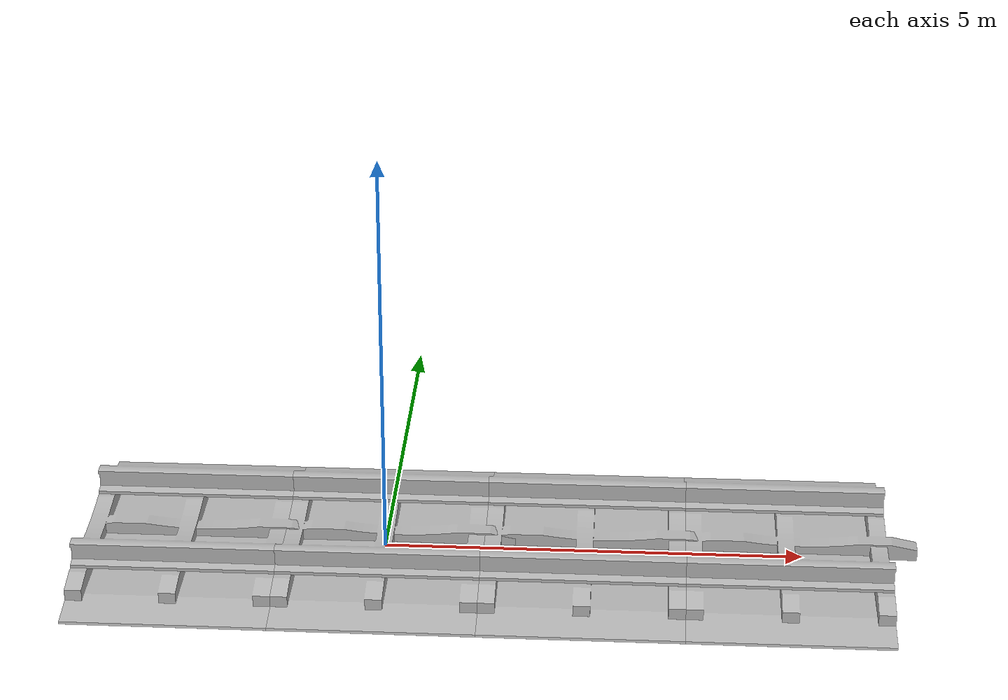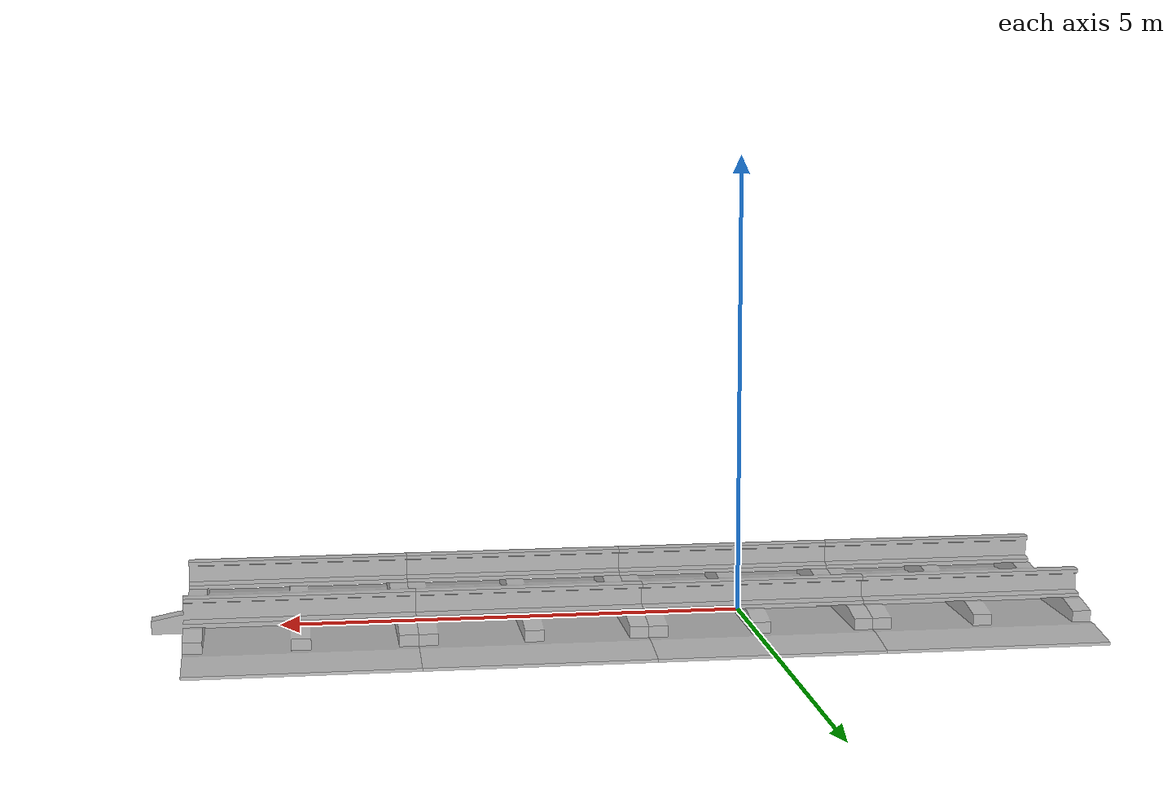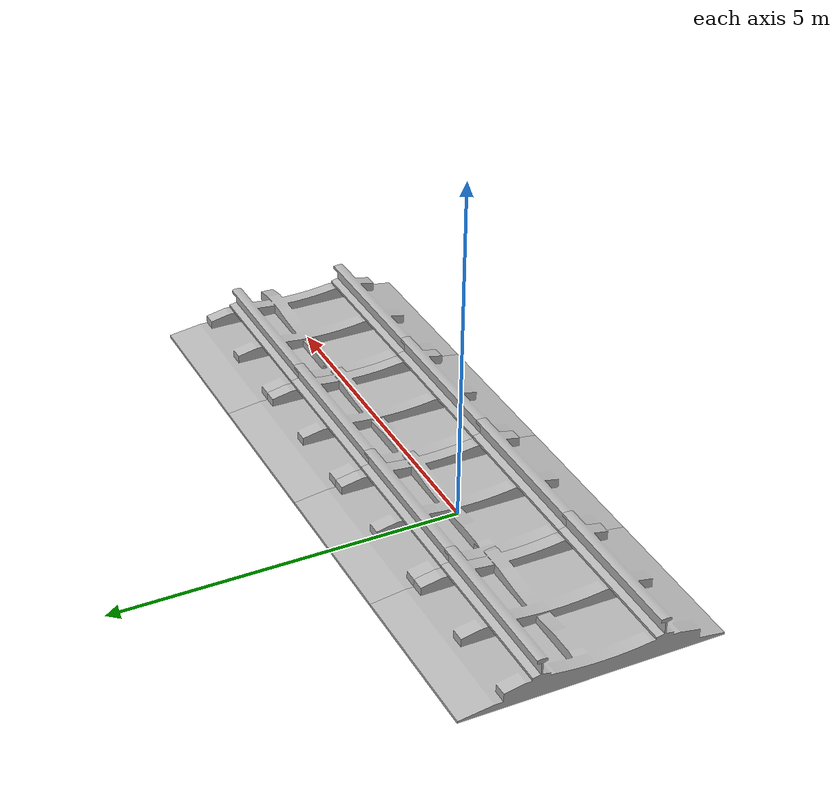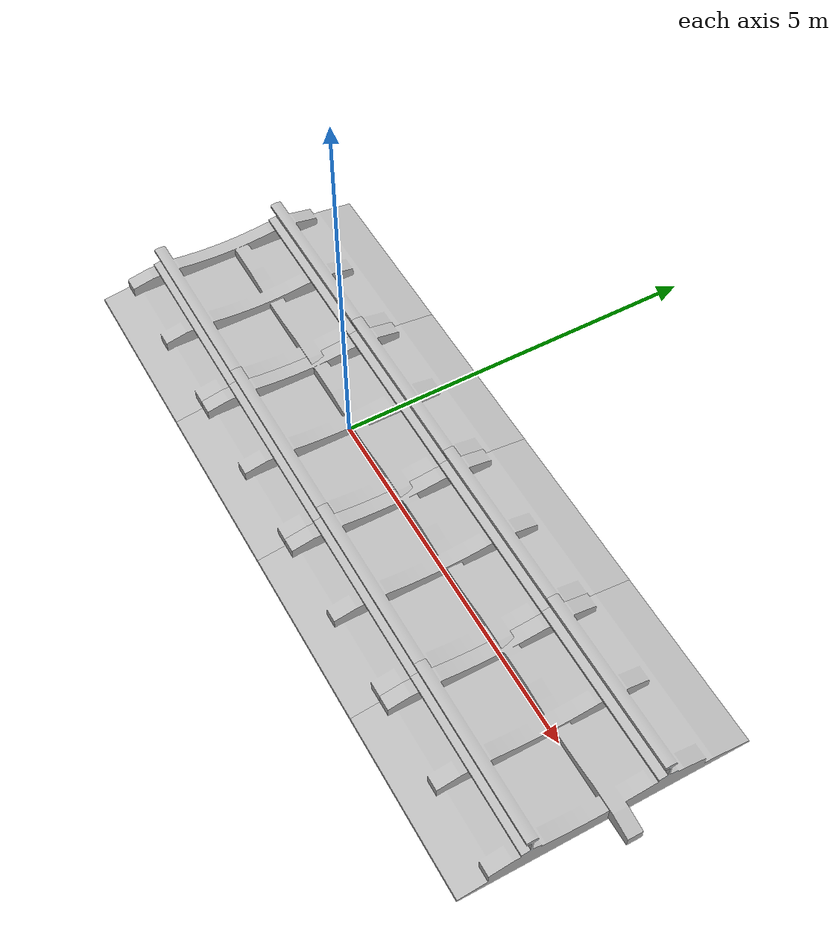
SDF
<?xml version='1.0'?>
<sdf version='1.7'>
  <model name='railway4'>
    <model name='railway2'>
      <model name='railway'>
        <static>1</static>
        <link name='link'>
          <visual name='visual'>
            <geometry>
              <mesh>
                <uri>model://railway/meshes/model.dae</uri>
              </mesh>
            </geometry>
          </visual>
        </link>
        <pose>1.19969 -6.9e-05 0 0 -0 0</pose>
      </model>
      <model name='railway_0'>
        <static>1</static>
        <link name='link'>
          <visual name='visual'>
            <geometry>
              <mesh>
                <uri>model://railway/meshes/model.dae</uri>
              </mesh>
            </geometry>
          </visual>
        </link>
        <pose>-1.1997 6.9e-05 0 0 -0 0</pose>
      </model>
      <static>0</static>
      <allow_auto_disable>1</allow_auto_disable>
      <pose>-2.39934 4.6e-05 0 0 -0 0</pose>
    </model>
    <model name='railway2_0'>
      <model name='railway'>
        <static>1</static>
        <link name='link'>
          <visual name='visual'>
            <geometry>
              <mesh>
                <uri>model://railway/meshes/model.dae</uri>
              </mesh>
            </geometry>
          </visual>
        </link>
        <pose>1.19969 -6.9e-05 0 0 -0 0</pose>
      </model>
      <model name='railway_0'>
        <static>1</static>
        <link name='link'>
          <visual name='visual'>
            <geometry>
              <mesh>
                <uri>model://railway/meshes/model.dae</uri>
              </mesh>
            </geometry>
          </visual>
        </link>
        <pose>-1.1997 6.9e-05 0 0 -0 0</pose>
      </model>
      <static>0</static>
      <allow_auto_disable>1</allow_auto_disable>
      <pose>2.39934 -5.4e-05 0 0 -0 0</pose>
    </model>
    <static>0</static>
    <allow_auto_disable>1</allow_auto_disable>
  </model>
</sdf>
